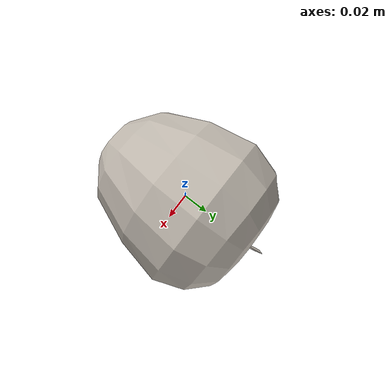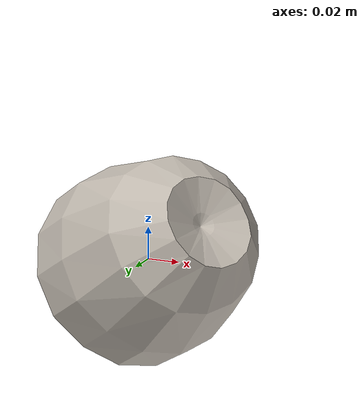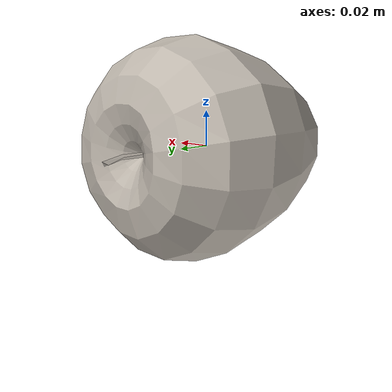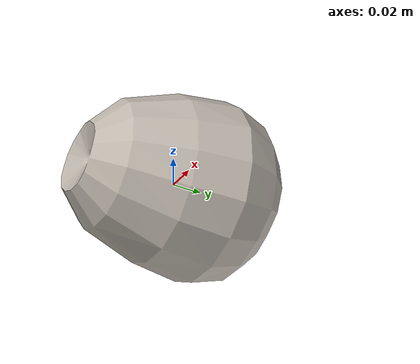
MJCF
<mujoco model="Apple_6">
  <compiler autolimits="true" boundmass="0.01" angle="radian"/>
  <default>
    <default class="/">
      <default class="__VISUAL_MJT__">
        <geom contype="0" conaffinity="0" group="0"/>
      </default>
      <default class="__STRUCTURAL_MJT__">
        <geom contype="8" conaffinity="15" group="4" friction="0.90000000000000002 0.90000000000000002 0.001" solref="0.025000000000000001 1" solimp="0.998 0.998 0.001"/>
      </default>
      <default class="__DYNAMIC_MJT__">
        <geom contype="1" conaffinity="15" group="4" friction="0.90000000000000002 0.90000000000000002 0.001" solref="0.025000000000000001 1" solimp="0.998 0.998 0.001"/>
      </default>
    </default>
  </default>
  <asset>
    <texture name="Apple1_Mat6" type="2d" file="Apple1_AlbedoTransparency6.png"/>
    <material name="material_Apple1_Mat6" class="/" texture="Apple1_Mat6" specular="0.5" shininess="0.5" rgba="1 1 1 1"/>
    <mesh name="Apple_6_apple_a6" class="/" file="Apple_6_apple_a6/Apple_6_apple_a6.obj" scale="1 1 1"/>
  </asset>
  <worldbody>
    <body name="Apple_6">
      <joint name="Apple_6_free" class="/" type="free" pos="0 0 0" axis="0 0 1" stiffness="0" range="0 0" armature="0" damping="0.10000000000000001" frictionloss="0"/>
      <body name="Apple_6_apple_a6" pos="-0 -0.0033800000000000002 0" quat="1 0 0 0">
        <geom name="Apple_6_apple_a6" class="__VISUAL_MJT__" type="mesh" material="material_Apple1_Mat6" shellinertia="false" mesh="Apple_6_apple_a6"/>
        <geom name="Apple_6_PrimitiveCollider_0" class="__DYNAMIC_MJT__" type="capsule" size="0.064417943358421326 0.0058592110872268677" rgba="0 1 0 1" pos="-0 0.0033821761608123779 0" quat="0.70710678118654757 0.70710678118654746 0 0"/>
      </body>
    </body>
  </worldbody>
</mujoco>
